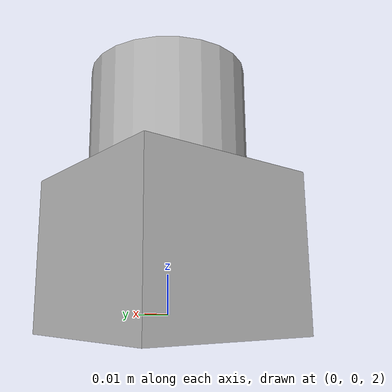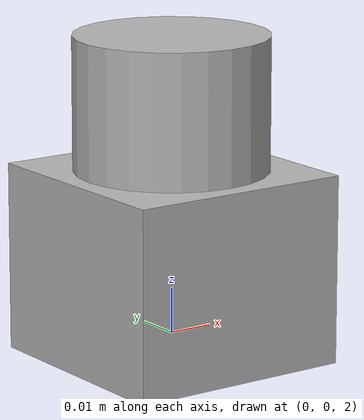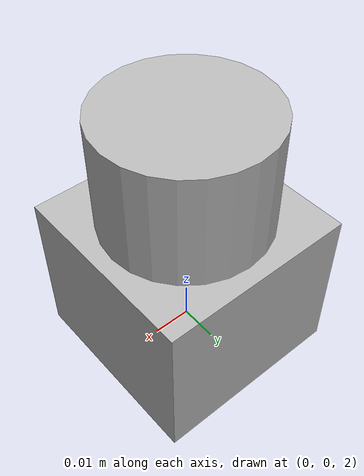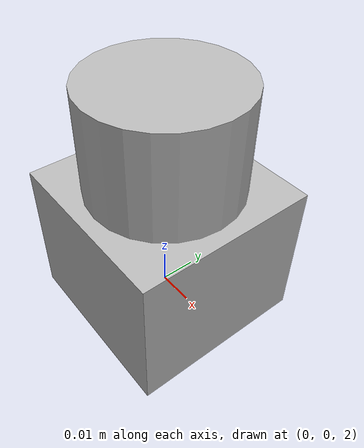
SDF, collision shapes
<?xml version='1.0'?>
<sdf version='1.4'>
  <model name="quadrotor_dc">
  <static>false</static>
          <link name='quadrotor'>
          <gravity>0</gravity>
            <pose>0 0 2.0 0 0 0</pose>
            <collision name='collision'>
              <geometry>
                <sphere>
                <radius>0.0001</radius>
              </sphere>
              </geometry>
            </collision>

            <visual name='quadrotor_center'>
		  <geometry>
		    <cylinder>
		      <radius>.05</radius>
		      <length>0.02</length>
		    </cylinder>
		  </geometry>
		<material>
			<ambient> 0 0 0 1 </ambient>
		</material>
            </visual>
            <visual name='quadrotor_x_arms'>
		<pose>0.0 0.0 0.0 0.0 1.5707 0.0</pose>
		  <geometry>
		    <cylinder>
		      <radius>.006</radius>
		      <length>0.66</length>
		    </cylinder>
		  </geometry>
		<material>
			<ambient> 0 0 0 1 </ambient>
		</material>
            </visual>
            <visual name='quadrotor_y_arms'>
		<pose>0.0 0.0 0.0 0.0 1.5707 1.5707</pose>
		  <geometry>
		    <cylinder>
		      <radius>.006</radius>
		      <length>0.66</length>
		    </cylinder>
		  </geometry>
		<material>
			<ambient> 0 0 0 1 </ambient>
		</material>
            </visual>

            <visual name='motor_pos_x'>
		<pose>0.33 0.0 0.006 0.0 0.0 0.0</pose>
		  <geometry>
		    <cylinder>
		      <radius>.006</radius>
		      <length>0.024</length>
		    </cylinder>
		  </geometry>
		<material>
			<ambient> 0.0 0.0 0.0 1.0 </ambient>
		</material>
            </visual>
            <visual name='prop_pos_x'>
		<pose>0.33 0.0 0.02 0.0 0.0 0.0</pose>
		  <geometry>
		    <cylinder>
		      <radius>.1</radius>
		      <length>0.01</length>
		    </cylinder>
		  </geometry>
		<material>
			<ambient> 0.5 0.5 0.5 1.0 </ambient>
		</material>
            </visual>
            <visual name='motor_neg_x'>
		<pose>-0.33 0.0 0.006 0.0 0.0 0.0</pose>
		  <geometry>
		    <cylinder>
		      <radius>.006</radius>
		      <length>0.024</length>
		    </cylinder>
		  </geometry>
		<material>
			<ambient> 0.0 0.0 0.0 1.0 </ambient>
		</material>
            </visual>
            <visual name='prop_neg_x'>
		<pose>-0.33 0.0 0.02 0.0 0.0 0.0</pose>
		  <geometry>
		    <cylinder>
		      <radius>.1</radius>
		      <length>0.01</length>
		    </cylinder>
		  </geometry>
		<material>
			<ambient> 0.5 0.5 0.5 1.0 </ambient>
		</material>
            </visual>
            <visual name='motor_pos_y'>
		<pose>0.0 0.33 0.006 0.0 0.0 0.0</pose>
		  <geometry>
		    <cylinder>
		      <radius>.006</radius>
		      <length>0.024</length>
		    </cylinder>
		  </geometry>
		<material>
			<ambient> 0.0 0.0 0.0 1.0 </ambient>
		</material>
            </visual>
            <visual name='prop_pos_y'>
		<pose>0.0 0.33 0.02 0.0 0.0 0.0</pose>
		  <geometry>
		    <cylinder>
		      <radius>.1</radius>
		      <length>0.01</length>
		    </cylinder>
		  </geometry>
		<material>
			<ambient> 0.5 0.5 0.5 1.0 </ambient>
		</material>
            </visual>
            <visual name='motor_neg_y'>
		<pose>0.0 -0.33 0.006 0.0 0.0 0.0</pose>
		  <geometry>
		    <cylinder>
		      <radius>.006</radius>
		      <length>0.024</length>
		    </cylinder>
		  </geometry>
		<material>
			<ambient> 0.0 0.0 0.0 1.0 </ambient>
		</material>
            </visual>
            <visual name='prop_neg_y'>
		<pose>0.0 -0.33 0.02 0.0 0.0 0.0</pose>
		  <geometry>
		    <cylinder>
		      <radius>.1</radius>
		      <length>0.01</length>
		    </cylinder>
		  </geometry>
		<material>
			<ambient> 0.5 0.5 0.5 1.0 </ambient>
		</material>
            </visual>

          </link>

    <include>
      <uri>model://hokuyo</uri>
      <pose>0.0 0 2.03 0 0 0</pose>
    </include>
    <joint name="hokuyo_joint" type="revolute">
      <child>hokuyo::link</child>
      <parent>quadrotor</parent>
      <axis>
        <xyz>0 0 1</xyz>
        <limit>
          <upper>10</upper>
          <lower>0</lower>
        </limit>
      </axis>
    </joint>

  </model>
</sdf>

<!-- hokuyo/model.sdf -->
<sdf version="1.5">
  <model name="hokuyo">
    <pose>0 0 0.035 0 0 0</pose>
    <link name="link">
      <inertial>
        <mass>0.1</mass>
      </inertial>
      <visual name="visual">
        <geometry>
          <mesh>
            <uri>model://../model_source/models/hokuyo/meshes/hokuyo.dae</uri>
          </mesh>
        </geometry>
      </visual>
      <collision name="collision-base">
        <pose>0 0 -0.0145 0 0 0</pose>
        <geometry>
          <box>
            <size>0.05 0.05 0.041</size>
          </box>
        </geometry>
      </collision>
      <collision name="collision-top">
        <pose>0 0 0.0205 0 0 0</pose>
        <geometry>
          <cylinder>
            <radius>0.021</radius>
            <length>0.029</length>
          </cylinder>
        </geometry>
      </collision>
      <sensor name="laser" type="ray">
        <pose>0.01 0 0.0175 0 -0 0</pose>
        <ray>
          <scan>
            <horizontal>
              <samples>640</samples>
              <resolution>1</resolution>
              <min_angle>-2.26889</min_angle>
              <max_angle>2.268899</max_angle>
            </horizontal>
          </scan>
          <range>
            <min>0.08</min>
            <max>10</max>
            <resolution>0.01</resolution>
          </range>
        </ray>
        <plugin name="laser" filename="libRayPlugin.so" />
        <always_on>1</always_on>
        <update_rate>30</update_rate>
        <visualize>true</visualize>
      </sensor>
    </link>
  </model>
</sdf>
